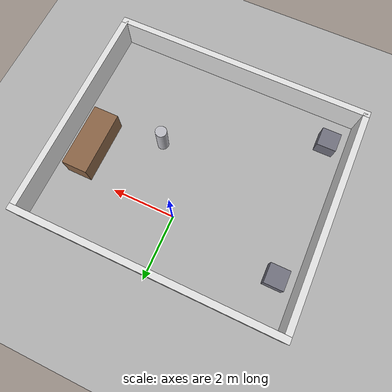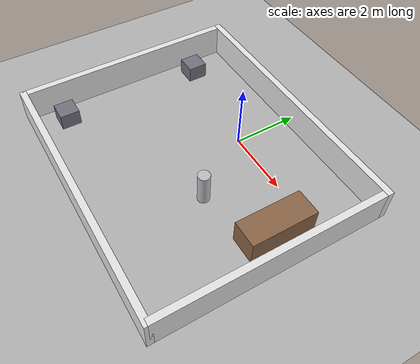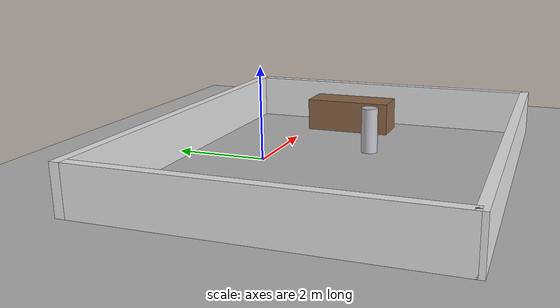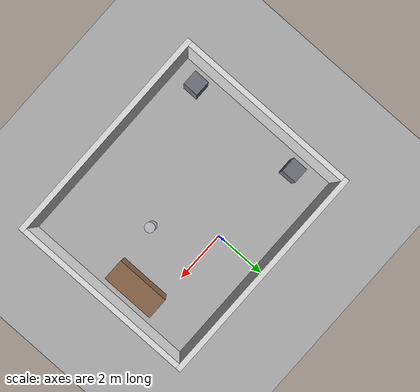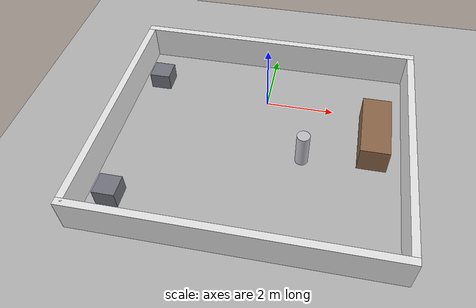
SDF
<?xml version="1.0"?>
<sdf version="1.8">
  <world name="drawer_room">

    <physics name="10ms" type="ignored">
      <max_step_size>0.01</max_step_size>
      <real_time_factor>1.0</real_time_factor>
    </physics>

    <plugin filename="gz-sim-physics-system"           name="gz::sim::systems::Physics"/>
    <plugin filename="gz-sim-user-commands-system"     name="gz::sim::systems::UserCommands"/>
    <plugin filename="gz-sim-scene-broadcaster-system" name="gz::sim::systems::SceneBroadcaster"/>
    <plugin filename="gz-sim-sensors-system"           name="gz::sim::systems::Sensors">
      <render_engine>ogre2</render_engine>
    </plugin>

    <light name="sun" type="directional">
      <cast_shadows>true</cast_shadows>
      <pose>0 -2 10 0 0 0</pose>
      <diffuse>1 1 1 1</diffuse>
      <specular>0.5 0.5 0.5 1</specular>
      <direction>-0.3 0.2 -0.9</direction>
    </light>

    <!-- 地板 -->
    <model name="ground_plane">
      <static>true</static>
      <link name="link">
        <collision name="collision">
          <geometry><plane><normal>0 0 1</normal><size>20 20</size></plane></geometry>
        </collision>
        <visual name="visual">
          <geometry><plane><normal>0 0 1</normal><size>20 20</size></plane></geometry>
          <material>
            <ambient>0.7 0.7 0.7 1</ambient>
            <diffuse>0.7 0.7 0.7 1</diffuse>
          </material>
        </visual>
      </link>
    </model>

    <!-- 北牆：緊貼櫃體背面（內面 1.70，牆心 1.80） -->
    <model name="wall_north">
      <static>true</static>
      <pose>0 1.8 0.5 0 0 0</pose>
      <link name="link">
        <collision name="c"><geometry><box><size>8.4 0.2 1</size></box></geometry></collision>
        <visual name="v"><geometry><box><size>8.4 0.2 1</size></box></geometry>
          <material><ambient>0.9 0.9 0.9 1</ambient><diffuse>0.9 0.9 0.9 1</diffuse></material>
        </visual>
      </link>
    </model>

    <!-- 南牆 -->
    <model name="wall_south">
      <static>true</static>
      <pose>0 -5.1 0.5 0 0 0</pose>
      <link name="link">
        <collision name="c"><geometry><box><size>8.4 0.2 1</size></box></geometry></collision>
        <visual name="v"><geometry><box><size>8.4 0.2 1</size></box></geometry>
          <material><ambient>0.9 0.9 0.9 1</ambient><diffuse>0.9 0.9 0.9 1</diffuse></material>
        </visual>
      </link>
    </model>

    <!-- 東牆 -->
    <model name="wall_east">
      <static>true</static>
      <pose>4.1 -1.7 0.5 0 0 0</pose>
      <link name="link">
        <collision name="c"><geometry><box><size>0.2 6.8 1</size></box></geometry></collision>
        <visual name="v"><geometry><box><size>0.2 6.8 1</size></box></geometry>
          <material><ambient>0.9 0.9 0.9 1</ambient><diffuse>0.9 0.9 0.9 1</diffuse></material>
        </visual>
      </link>
    </model>

    <!-- 西牆 -->
    <model name="wall_west">
      <static>true</static>
      <pose>-4.1 -1.7 0.5 0 0 0</pose>
      <link name="link">
        <collision name="c"><geometry><box><size>0.2 6.8 1</size></box></geometry></collision>
        <visual name="v"><geometry><box><size>0.2 6.8 1</size></box></geometry>
          <material><ambient>0.9 0.9 0.9 1</ambient><diffuse>0.9 0.9 0.9 1</diffuse></material>
        </visual>
      </link>
    </model>

    <!-- 靠東牆的長桌（普通擺設；不在起點到櫃體的路徑上） -->
    <model name="table_east">
      <static>true</static>
      <pose>3.2 -1.0 0.375 0 0 0</pose>
      <link name="link">
        <collision name="c"><geometry><box><size>0.8 2.0 0.75</size></box></geometry></collision>
        <visual name="v"><geometry><box><size>0.8 2.0 0.75</size></box></geometry>
          <material><ambient>0.55 0.40 0.28 1</ambient><diffuse>0.55 0.40 0.28 1</diffuse></material>
        </visual>
      </link>
    </model>

    <!-- 靠西牆的兩個箱子 -->
    <model name="box_west_a">
      <static>true</static>
      <pose>-3.4 0.4 0.25 0 0 0</pose>
      <link name="link">
        <collision name="c"><geometry><box><size>0.6 0.6 0.5</size></box></geometry></collision>
        <visual name="v"><geometry><box><size>0.6 0.6 0.5</size></box></geometry>
          <material><ambient>0.45 0.45 0.50 1</ambient><diffuse>0.45 0.45 0.50 1</diffuse></material>
        </visual>
      </link>
    </model>
    <model name="box_west_b">
      <static>true</static>
      <pose>-3.4 -4.1 0.25 0 0 0</pose>
      <link name="link">
        <collision name="c"><geometry><box><size>0.6 0.6 0.5</size></box></geometry></collision>
        <visual name="v"><geometry><box><size>0.6 0.6 0.5</size></box></geometry>
          <material><ambient>0.45 0.45 0.50 1</ambient><diffuse>0.45 0.45 0.50 1</diffuse></material>
        </visual>
      </link>
    </model>

    <!-- 房間中段偏東的柱子：造成一個要繞的轉折，但不夾住任何通路 -->
    <model name="pillar_mid">
      <static>true</static>
      <pose>1.3 -2.0 0.5 0 0 0</pose>
      <link name="link">
        <collision name="c"><geometry><cylinder><radius>0.18</radius><length>1.0</length></cylinder></geometry></collision>
        <visual name="v"><geometry><cylinder><radius>0.18</radius><length>1.0</length></cylinder></geometry>
          <material><ambient>0.75 0.75 0.78 1</ambient><diffuse>0.75 0.75 0.78 1</diffuse></material>
        </visual>
      </link>
    </model>

  </world>
</sdf>
